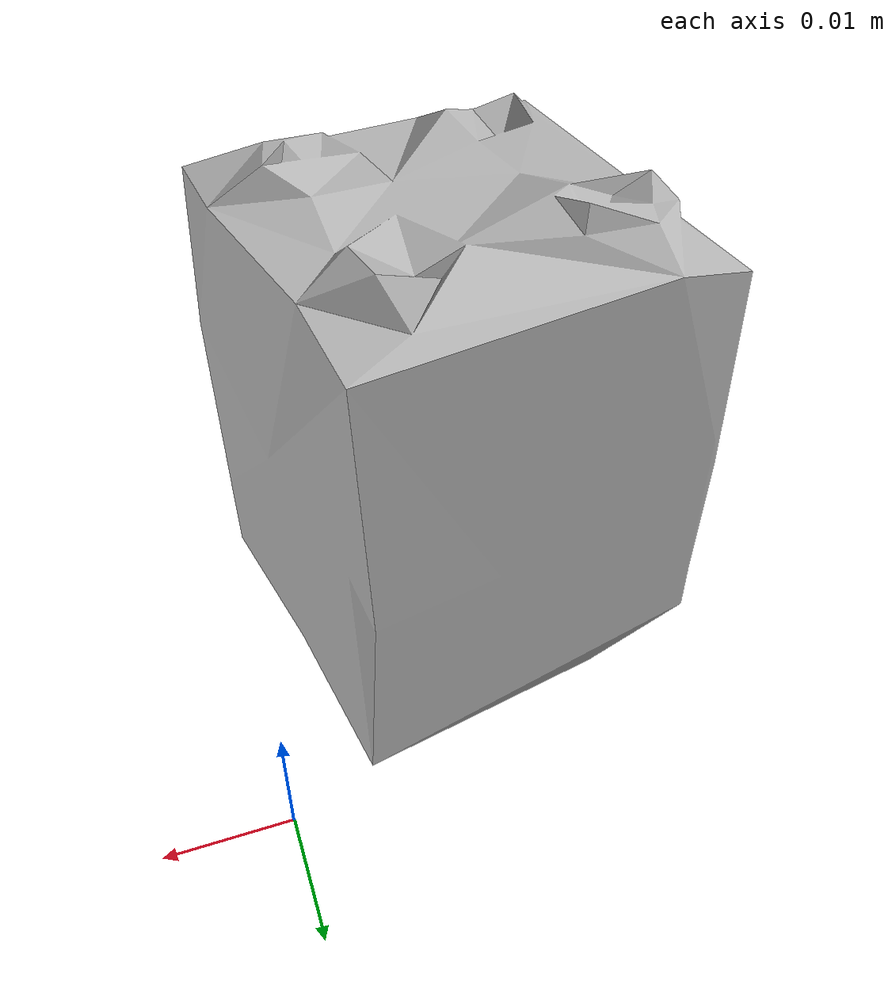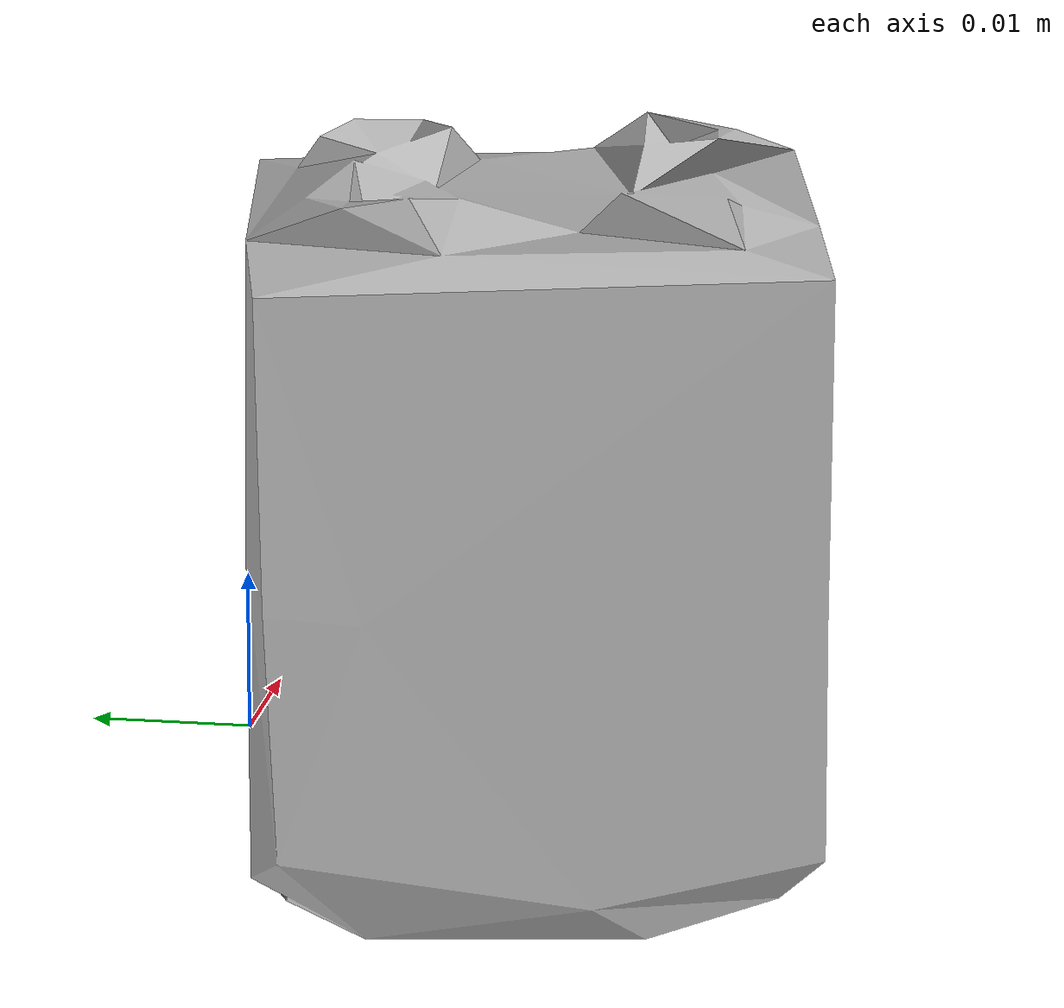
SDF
<?xml version='1.0'?>
<sdf version="1.4">
  <model name="073-b_lego_duplo">
    <static>false</static>
    <link name="link">
      <inertial>
        <pose>-0.020092459575378228 -0.020774534520630286 0.020706472413004714 0.007050426650045504 0.0016762275569571325 -1.9834629131251744</pose>
        <mass>0.00433465512217716</mass>
        <inertia>
          <ixx>1.0081515364588823e-06</ixx>
          <ixy>5.421793981984639e-23</ixy>
          <ixz>-2.0896051690366554e-22</ixz>
          <iyy>1.0065021318498468e-06</iyy>
          <iyz>-1.1049710348975446e-22</iyz>
          <izz>7.292649608543341e-07</izz>
        </inertia>
      </inertial>
      <collision name="collision">
        <geometry>
          <mesh>
            <!-- Use a downsampled mesh for collisions -->
            <uri>model:///073-b_lego_duplo/073-b_lego_duplo_250_collision.stl</uri>
	        </mesh>
        </geometry>
        <surface>
      </surface>
      </collision>
      <visual name="visual">
        <geometry>
          <mesh>
            <uri>model:///073-b_lego_duplo/textured.obj</uri>
	        </mesh>
        </geometry>
        <material>
          <script>
            <uri>model:///073-b_lego_duplo/073-b_lego_duplo.material</uri>
            <name>073-b_lego_duplo</name>
          </script>
        </material>
      </visual>
    </link>
  </model>
</sdf>
